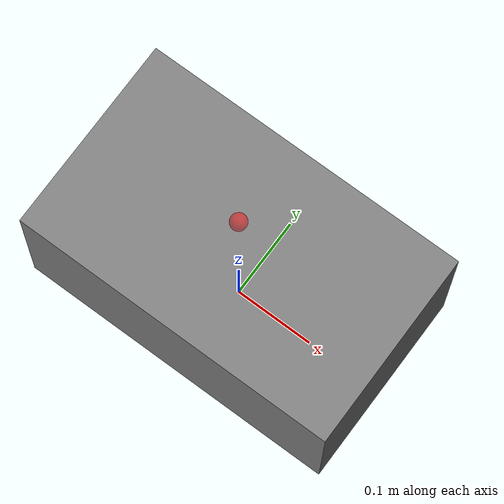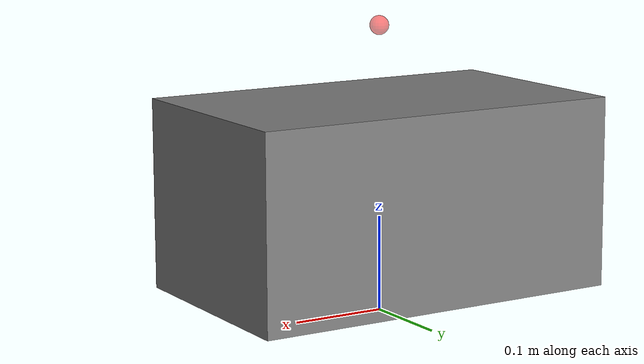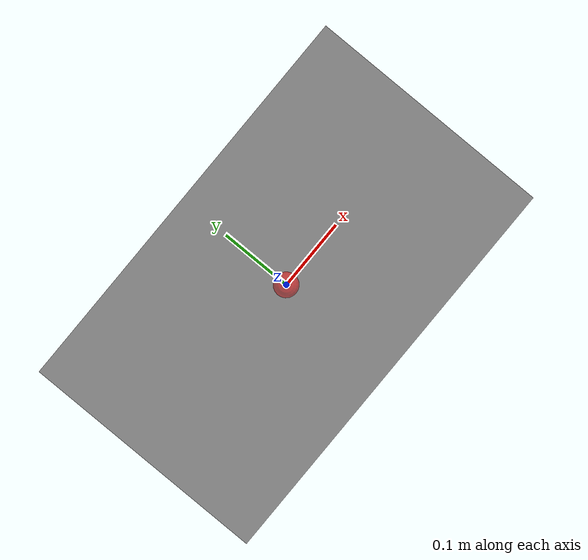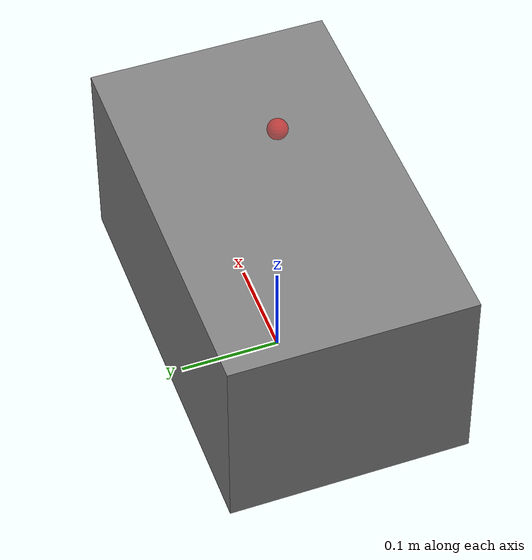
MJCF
<mujoco model="mujoco_robot">

  <worldbody>
    <body name="base_link" pos="0 0 0.125">
      <freejoint name="base_freejoint"/>
      <geom name="robot_body"
            type="box"
            size="0.20 0.12 0.10"
            mass="5.6"
            contype="1"
            conaffinity="1"
            friction="0.01 0.005 0.0001"/>
      <!-- Single lidar site — mujoco_sim.simulate_lidar() casts rays from here -->
      <site name="lidar_site" pos="0 0 0.175" size="0.01" rgba="1 0 0 0.5"/>
    </body>
  </worldbody>

</mujoco>
